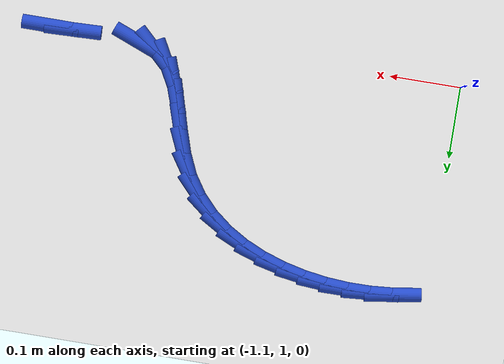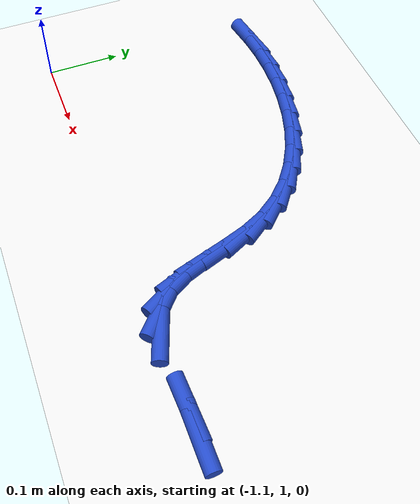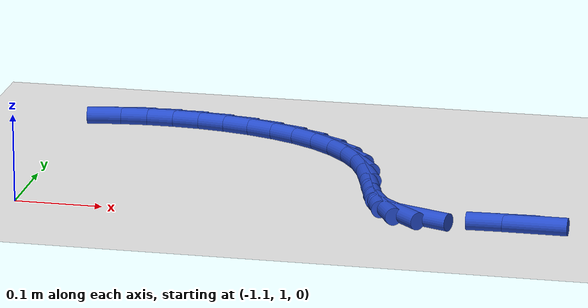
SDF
<sdf version="1.6">
 <world name="default">
  <model name="ground_plane">
   <static>1</static>
   <link name="link">
    <collision name="collision">
     <geometry><plane><normal>0 0 1</normal><size>100 100</size></plane></geometry>
     <surface><friction><ode><mu>100</mu><mu2>50</mu2></ode></friction></surface>
    </collision>
    <visual name="visual">
     <cast_shadows>0</cast_shadows>
     <geometry><plane><normal>0 0 1</normal><size>100 100</size></plane></geometry>
     <material>
      <script><uri>file://media/materials/scripts/gazebo.material</uri><name>Gazebo/WhiteGlow</name></script>
     </material>
    </visual>
   </link>
  </model>
  <model name="line">
   <link name="link_40">
    <pose>-0.5210911083533573 1.0083136409340643 0.01 0 1.57 -0.002757266186198285</pose>
    <collision name="collision">
     <geometry><cylinder><radius>0.01</radius><length>0.08</length></cylinder></geometry>
    </collision>
    <visual name="visual">
     <material>
      <script><name>Gazebo/Blue</name><uri>file://media/materials/scripts/gazebo.material</uri></script>
     </material>
     <geometry><cylinder><radius>0.01</radius><length>0.08</length></cylinder></geometry>
    </visual>
   </link>
   <link name="link_41">
    <pose>-0.5528636562597132 1.0084012465280636 0.01 0 1.57 0.03362024390669865</pose>
    <collision name="collision">
     <geometry><cylinder><radius>0.01</radius><length>0.08</length></cylinder></geometry>
    </collision>
    <visual name="visual">
     <material>
      <script><name>Gazebo/Blue</name><uri>file://media/materials/scripts/gazebo.material</uri></script>
     </material>
     <geometry><cylinder><radius>0.01</radius><length>0.08</length></cylinder></geometry>
    </visual>
   </link>
   <link name="link_44">
    <pose>-0.6479217207805366 1.0110618098655089 0.01 0 1.57 -0.37038646269286063</pose>
    <collision name="collision">
     <geometry><cylinder><radius>0.01</radius><length>0.08</length></cylinder></geometry>
    </collision>
    <visual name="visual">
     <material>
      <script><name>Gazebo/Blue</name><uri>file://media/materials/scripts/gazebo.material</uri></script>
     </material>
     <geometry><cylinder><radius>0.01</radius><length>0.08</length></cylinder></geometry>
    </visual>
   </link>
   <link name="link_45">
    <pose>-0.6728559767126059 1.0207439766700275 0.01 0 1.57 -0.7573637008103862</pose>
    <collision name="collision">
     <geometry><cylinder><radius>0.01</radius><length>0.08</length></cylinder></geometry>
    </collision>
    <visual name="visual">
     <material>
      <script><name>Gazebo/Blue</name><uri>file://media/materials/scripts/gazebo.material</uri></script>
     </material>
     <geometry><cylinder><radius>0.01</radius><length>0.08</length></cylinder></geometry>
    </visual>
   </link>
   <link name="link_46">
    <pose>-0.691487210400188 1.038358805193856 0.01 0 1.57 -1.0710989841286964</pose>
    <collision name="collision">
     <geometry><cylinder><radius>0.01</radius><length>0.08</length></cylinder></geometry>
    </collision>
    <visual name="visual">
     <material>
      <script><name>Gazebo/Blue</name><uri>file://media/materials/scripts/gazebo.material</uri></script>
     </material>
     <geometry><cylinder><radius>0.01</radius><length>0.08</length></cylinder></geometry>
    </visual>
   </link>
   <link name="link_47">
    <pose>-0.7048511845557581 1.062839002791563 0.01 0 1.57 -1.2340177851394074</pose>
    <collision name="collision">
     <geometry><cylinder><radius>0.01</radius><length>0.08</length></cylinder></geometry>
    </collision>
    <visual name="visual">
     <material>
      <script><name>Gazebo/Blue</name><uri>file://media/materials/scripts/gazebo.material</uri></script>
     </material>
     <geometry><cylinder><radius>0.01</radius><length>0.08</length></cylinder></geometry>
    </visual>
   </link>
   <link name="link_48">
    <pose>-0.7150326963520536 1.0919193625003398 0.01 0 1.57 -1.2892133753180883</pose>
    <collision name="collision">
     <geometry><cylinder><radius>0.01</radius><length>0.08</length></cylinder></geometry>
    </collision>
    <visual name="visual">
     <material>
      <script><name>Gazebo/Blue</name><uri>file://media/materials/scripts/gazebo.material</uri></script>
     </material>
     <geometry><cylinder><radius>0.01</radius><length>0.08</length></cylinder></geometry>
    </visual>
   </link>
   <link name="link_49">
    <pose>-0.7241192705071197 1.1233315627165315 0.01 0 1.57 -1.2608936443983363</pose>
    <collision name="collision">
     <geometry><cylinder><radius>0.01</radius><length>0.08</length></cylinder></geometry>
    </collision>
    <visual name="visual">
     <material>
      <script><name>Gazebo/Blue</name><uri>file://media/materials/scripts/gazebo.material</uri></script>
     </material>
     <geometry><cylinder><radius>0.01</radius><length>0.08</length></cylinder></geometry>
    </visual>
   </link>
   <link name="link_50">
    <pose>-0.7341984317390019 1.1548072818364854 0.01 0 1.57 -1.1490006195326392</pose>
    <collision name="collision">
     <geometry><cylinder><radius>0.01</radius><length>0.08</length></cylinder></geometry>
    </collision>
    <visual name="visual">
     <material>
      <script><name>Gazebo/Blue</name><uri>file://media/materials/scripts/gazebo.material</uri></script>
     </material>
     <geometry><cylinder><radius>0.01</radius><length>0.08</length></cylinder></geometry>
    </visual>
   </link>
   <link name="link_51">
    <pose>-0.7473402795493991 1.1840941660274253 0.01 0 1.57 -0.9797933281670176</pose>
    <collision name="collision">
     <geometry><cylinder><radius>0.01</radius><length>0.08</length></cylinder></geometry>
    </collision>
    <visual name="visual">
     <material>
      <script><name>Gazebo/Blue</name><uri>file://media/materials/scripts/gazebo.material</uri></script>
     </material>
     <geometry><cylinder><radius>0.01</radius><length>0.08</length></cylinder></geometry>
    </visual>
   </link>
   <link name="link_52">
    <pose>-0.7646223096916805 1.209849443806087 0.01 0 1.57 -0.8148135316992393</pose>
    <collision name="collision">
     <geometry><cylinder><radius>0.01</radius><length>0.08</length></cylinder></geometry>
    </collision>
    <visual name="visual">
     <material>
      <script><name>Gazebo/Blue</name><uri>file://media/materials/scripts/gazebo.material</uri></script>
     </material>
     <geometry><cylinder><radius>0.01</radius><length>0.08</length></cylinder></geometry>
    </visual>
   </link>
   <link name="link_53">
    <pose>-0.7856131574820419 1.2321130030070255 0.01 0 1.57 -0.6649157038926824</pose>
    <collision name="collision">
     <geometry><cylinder><radius>0.01</radius><length>0.08</length></cylinder></geometry>
    </collision>
    <visual name="visual">
     <material>
      <script><name>Gazebo/Blue</name><uri>file://media/materials/scripts/gazebo.material</uri></script>
     </material>
     <geometry><cylinder><radius>0.01</radius><length>0.08</length></cylinder></geometry>
    </visual>
   </link>
   <link name="link_54">
    <pose>-0.8097550712528764 1.2510405474385604 0.01 0 1.57 -0.5322971140219566</pose>
    <collision name="collision">
     <geometry><cylinder><radius>0.01</radius><length>0.08</length></cylinder></geometry>
    </collision>
    <visual name="visual">
     <material>
      <script><name>Gazebo/Blue</name><uri>file://media/materials/scripts/gazebo.material</uri></script>
     </material>
     <geometry><cylinder><radius>0.01</radius><length>0.08</length></cylinder></geometry>
    </visual>
   </link>
   <link name="link_55">
    <pose>-0.836490299336578 1.2667877809090107 0.01 0 1.57 -0.4163538527721515</pose>
    <collision name="collision">
     <geometry><cylinder><radius>0.01</radius><length>0.08</length></cylinder></geometry>
    </collision>
    <visual name="visual">
     <material>
      <script><name>Gazebo/Blue</name><uri>file://media/materials/scripts/gazebo.material</uri></script>
     </material>
     <geometry><cylinder><radius>0.01</radius><length>0.08</length></cylinder></geometry>
    </visual>
   </link>
   <link name="link_56">
    <pose>-0.86526109006554 1.2795104072266952 0.01 0 1.57 -0.31491730079808405</pose>
    <collision name="collision">
     <geometry><cylinder><radius>0.01</radius><length>0.08</length></cylinder></geometry>
    </collision>
    <visual name="visual">
     <material>
      <script><name>Gazebo/Blue</name><uri>file://media/materials/scripts/gazebo.material</uri></script>
     </material>
     <geometry><cylinder><radius>0.01</radius><length>0.08</length></cylinder></geometry>
    </visual>
   </link>
   <link name="link_57">
    <pose>-0.8955096917721564 1.289364130199933 0.01 0 1.57 -0.22520682919508236</pose>
    <collision name="collision">
     <geometry><cylinder><radius>0.01</radius><length>0.08</length></cylinder></geometry>
    </collision>
    <visual name="visual">
     <material>
      <script><name>Gazebo/Blue</name><uri>file://media/materials/scripts/gazebo.material</uri></script>
     </material>
     <geometry><cylinder><radius>0.01</radius><length>0.08</length></cylinder></geometry>
    </visual>
   </link>
   <link name="link_58">
    <pose>-0.9266783527888204 1.2965046536370426 0.01 0 1.57 -0.1442617764112294</pose>
    <collision name="collision">
     <geometry><cylinder><radius>0.01</radius><length>0.08</length></cylinder></geometry>
    </collision>
    <visual name="visual">
     <material>
      <script><name>Gazebo/Blue</name><uri>file://media/materials/scripts/gazebo.material</uri></script>
     </material>
     <geometry><cylinder><radius>0.01</radius><length>0.08</length></cylinder></geometry>
    </visual>
   </link>
   <link name="link_59">
    <pose>-0.9582171342124489 1.301086322193884 0.01 0 1.57 -0.06770821401263062</pose>
    <collision name="collision">
     <geometry><cylinder><radius>0.01</radius><length>0.08</length></cylinder></geometry>
    </collision>
    <visual name="visual">
     <material>
      <script><name>Gazebo/Blue</name><uri>file://media/materials/scripts/gazebo.material</uri></script>
     </material>
     <geometry><cylinder><radius>0.01</radius><length>0.08</length></cylinder></geometry>
    </visual>
   </link>
   <link name="link_60">
    <pose>-0.9897855805461712 1.3032270376147213 0.01 0 1.57 0.00704809466019418</pose>
    <collision name="collision">
     <geometry><cylinder><radius>0.01</radius><length>0.08</length></cylinder></geometry>
    </collision>
    <visual name="visual">
     <material>
      <script><name>Gazebo/Blue</name><uri>file://media/materials/scripts/gazebo.material</uri></script>
     </material>
     <geometry><cylinder><radius>0.01</radius><length>0.08</length></cylinder></geometry>
    </visual>
   </link>
   <link name="link_61">
    <pose>-1.0212707415783326 1.3030051235447886 0.01 0 1.57 0.07996266134254679</pose>
    <collision name="collision">
     <geometry><cylinder><radius>0.01</radius><length>0.08</length></cylinder></geometry>
    </collision>
    <visual name="visual">
     <material>
      <script><name>Gazebo/Blue</name><uri>file://media/materials/scripts/gazebo.material</uri></script>
     </material>
     <geometry><cylinder><radius>0.01</radius><length>0.08</length></cylinder></geometry>
    </visual>
   </link>
   <link name="link_62">
    <pose>-1.0525710919351297 1.3004969161002675 0.01 0 1.57 0.1509725087594473</pose>
    <collision name="collision">
     <geometry><cylinder><radius>0.01</radius><length>0.08</length></cylinder></geometry>
    </collision>
    <visual name="visual">
     <material>
      <script><name>Gazebo/Blue</name><uri>file://media/materials/scripts/gazebo.material</uri></script>
     </material>
     <geometry><cylinder><radius>0.01</radius><length>0.08</length></cylinder></geometry>
    </visual>
   </link>
  </model>
 </world>
</sdf>
